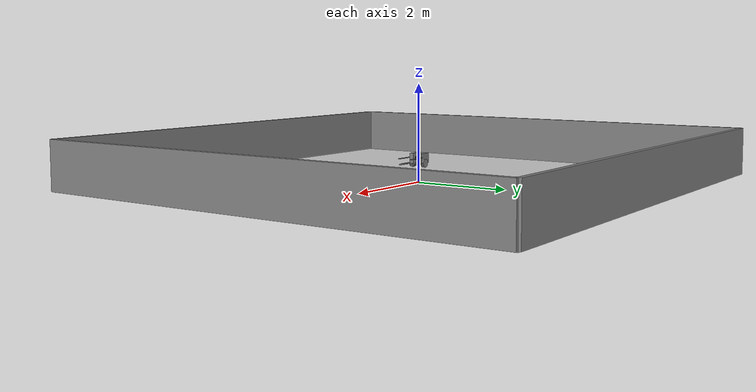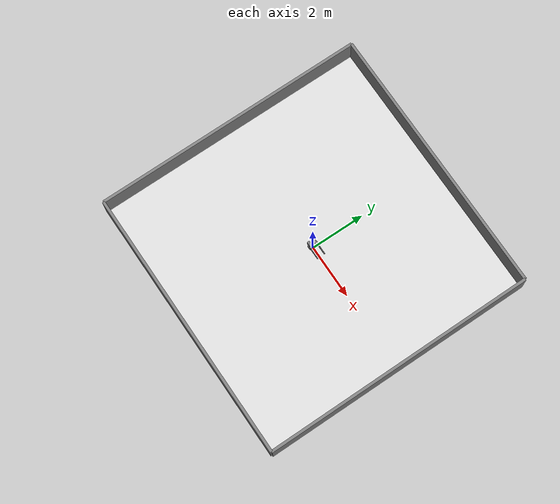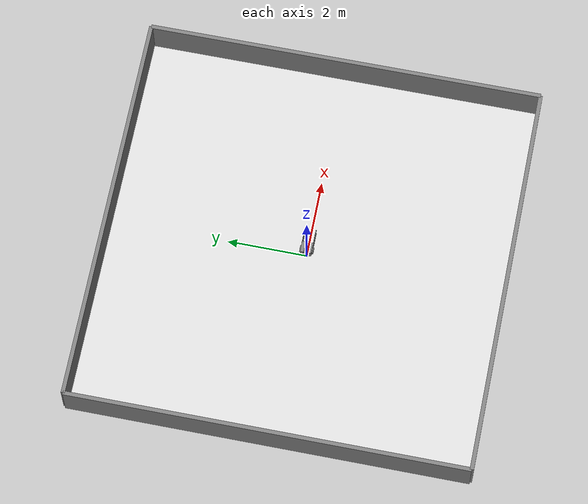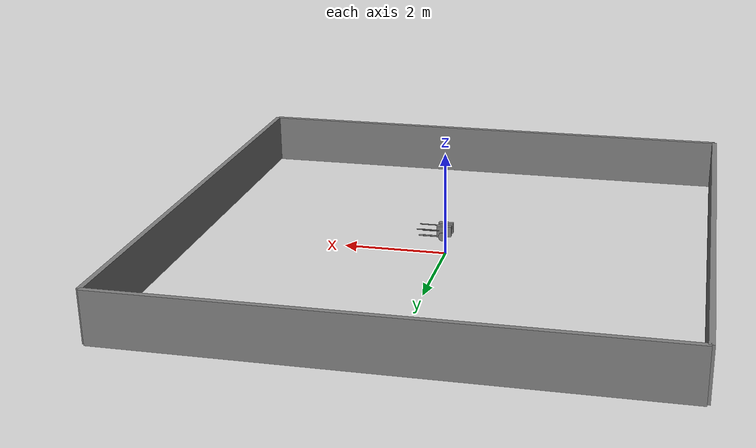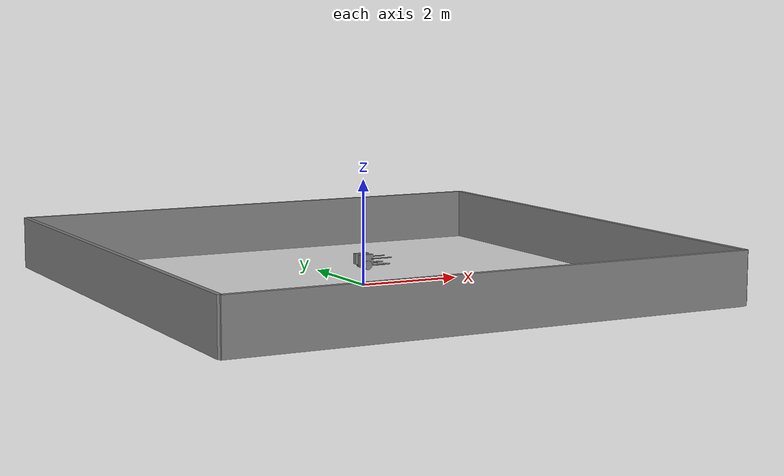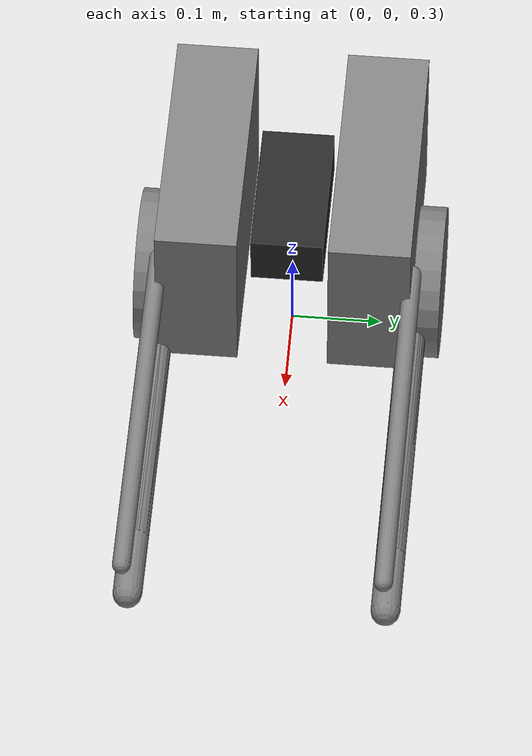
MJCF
<mujoco model="robotv2_3d">
  <compiler angle="radian" coordinate="local"/>
  <option timestep="0.001" integrator="RK4" solver="Newton" gravity="0 0 -9.81"/>

  <default>
    <joint damping="1.0" armature="0.01" limited="true"/>
    <geom contype="1" conaffinity="1" density="500"
          friction="2.0 0.2 0.02" solref="0.01 1" solimp="0.95 0.99 0.001"/>
    <motor ctrlrange="-1 1" ctrllimited="true"/>
  </default>

  <visual>
    <quality shadowsize="2048"/>
    <headlight ambient="0.15 0.15 0.15" diffuse="0.6 0.6 0.6" specular="0.2 0.2 0.2"/>
    <rgba haze="1 1 1 1"/>
    <global azimuth="2.0943951024" elevation="-0.2617993878"/>
  </visual>

  <asset>
    <texture name="floor_tex" type="2d" builtin="checker"
             rgb1="0.92 0.92 0.92" rgb2="0.78 0.78 0.78"
             width="512" height="512"/>
    <material name="floor_mat" texture="floor_tex" texrepeat="6 6"
              reflectance="0.15" shininess="0.8" specular="0.2"/>
  </asset>

  <worldbody>
    <geom name="ground" type="plane" pos="0 0 0" size="5 5 0.1" material="floor_mat"
          friction="2.0 0.2 0.02" condim="3"/>

    <!-- Simple bounding walls (10m x 10m arena) -->
    <geom name="wall_pos_x" type="box" pos="5.0 0 0.5" size="0.05 5.0 0.5"/>
    <geom name="wall_neg_x" type="box" pos="-5.0 0 0.5" size="0.05 5.0 0.5"/>
    <geom name="wall_pos_y" type="box" pos="0 5.0 0.5" size="5.0 0.05 0.5"/>
    <geom name="wall_neg_y" type="box" pos="0 -5.0 0.5" size="5.0 0.05 0.5"/>

    <!-- Studio lights -->
    <light name="key" pos="2 2 2.5" dir="-1 -1 -1" diffuse="0.9 0.9 0.9" specular="0.2 0.2 0.2"/>
    <light name="fill" pos="-2 1 1.5" dir="1 -0.5 -0.5" diffuse="0.4 0.4 0.4" specular="0 0 0"/>

    <!-- Full 3D floating base -->
    <body name="torso" pos="0 0 0.4">
      <joint name="base" type="free"/>

      <!-- Split torso into left/right boxes (rigidly attached to torso) -->
      <body name="torso_L" pos="0 0.095066 0">
        <inertial pos="-0.003391 -0.040604 0.008307" mass="1.284957" fullinertia="0.003761 0.006524 0.005182 0.000051 -0.002014 0.000004"/>
        <geom name="torso_geom_L" type="box" pos="0 0 0.09913"
              size="0.1402955 0.045066 0.09913"/>
      </body>

      <body name="torso_R" pos="0 -0.095066 0">
        <inertial pos="-0.003614 -0.059666 0.008323" mass="1.278354" fullinertia="0.003737 0.006513 0.005158 -0.000056 -0.002015 0.000003"/>
        <geom name="torso_geom_R" type="box" pos="0 0 0.09913"
              size="0.1402955 0.045066 0.09913"/>
      </body>

      <!-- Battery (centered between torso halves) -->
      <body name="battery" pos="0 0 0">
        <inertial pos="0.021501 0.053751 0.034684" mass="1.300646" fullinertia="0.003118 0.001480 0.003267 0.000000 -0.000000 -0.000000"/>
        <geom name="battery_geom" type="box" pos="0 0 0.09913"
              size="0.08 0.04 0.03" rgba="0.15 0.15 0.15 1"/>
      </body>

      <!-- Reference sites (track width = 0.280 m, CAD source of truth) -->
      <site name="H_L"  pos="0.00000  0.14000 0.00000" size="0.006" rgba="0 0 0 1"/>
      <site name="H_R"  pos="0.00000 -0.14000 0.00000" size="0.006" rgba="0 0 0 1"/>
      <site name="Bc_L" pos="0.09893  0.14000 0.11576" size="0.006" rgba="1 0 0 1"/>
      <site name="Bc_R" pos="0.09893 -0.14000 0.11576" size="0.006" rgba="1 0 0 1"/>
      <site name="imu" pos="0 0 0.12" size="0.006"/>

      <!-- Left linkage (Y+): H_L -> K_L -> W_L / C_L -->
      <body name="left_leg" pos="0 0.140 0">
        <body name="upper_L" pos="0 0 0">
          <joint name="hip_L" type="hinge" axis="0 1 0" range="0.4180063559 1.0653489754"/>
          <inertial pos="0.169752 -0.040285 -0.141881" mass="0.314212" fullinertia="0.003236 0.006156 0.004306 -0.000180 0.002982 0.000147"/>

          <site name="K_L" pos="0.39609 0 0" size="0.006" rgba="0 0 1 1"/>
          <geom name="upper_capsule_L" type="capsule"
                fromto="0 0 0  0.39609 0 0" size="0.016"/>

          <body name="lower_L" pos="0.39609 0 0">
            <joint name="knee_L" type="hinge" axis="0 1 0" range="-2.1223203704 -0.7283258969"/>
            <inertial pos="0.216786 -0.033851 -0.317681" mass="0.976380" fullinertia="0.010797 0.026113 0.018611 -0.002970 -0.012002 -0.002149"/>

            <site name="W_L" pos="-0.37996 0 0" size="0.006" rgba="0.6 0.6 0.6 1"/>
            <site name="C_L" pos="0.07506 0 0" size="0.006" rgba="0 1 0 1"/>

            <geom name="lower_capsule_L" type="capsule"
                  fromto="-0.37996 0 0  0.07506 0 0" size="0.016"/>

            <body name="wheel_L" pos="-0.37996 0 0">
              <joint name="wheel_L" type="hinge" axis="0 1 0" range="-100000 100000"/>
              <inertial pos="-0.005660 0.043267 -0.476216" mass="0.747917" fullinertia="0.001480 0.001737 0.001480 0.000000 -0.000000 0.000001"/>
              <geom name="wheel_geom_L" type="cylinder" size="0.085 0.03" euler="1.5707963268 0 0"
                    friction="2.0 0.2 0.02" condim="3"/>
            </body>
          </body>
        </body>
      </body>

      <!-- Rod link: Bc_L -> C_L -->
      <body name="rod_L" pos="0.09893 0.140 0.11576">
        <joint name="bc_L" type="hinge" axis="0 1 0" range="-3.1415926536 3.1415926536"/>
        <inertial pos="0.229129 -0.045290 -0.047488" mass="0.226234" fullinertia="0.005564 0.008976 0.003577 -0.000000 0.004355 0.000000"/>

        <site name="rod_tip_L" pos="0.41762 0 0" size="0.006"/>
        <geom name="rod_capsule_L" type="capsule"
              fromto="0 0 0  0.41762 0 0" size="0.010"/>
      </body>

      <!-- Right linkage (Y-): H_R -> K_R -> W_R / C_R -->
      <body name="right_leg" pos="0 -0.140 0">
        <body name="upper_R" pos="0 0 0">
          <joint name="hip_R" type="hinge" axis="0 1 0" range="0.4180063559 1.0653489754"/>
          <inertial pos="0.170871 -0.239215 -0.140529" mass="0.314212" fullinertia="0.003178 0.006156 0.004350 0.000182 0.002973 -0.000146"/>

          <site name="K_R" pos="0.39609 0 0" size="0.006" rgba="0 0 1 1"/>
          <geom name="upper_capsule_R" type="capsule"
                fromto="0 0 0  0.39609 0 0" size="0.016"/>

          <body name="lower_R" pos="0.39609 0 0">
            <joint name="knee_R" type="hinge" axis="0 1 0" range="-2.1223203704 -0.7283258969"/>
            <inertial pos="0.330666 -0.397670 0.093158" mass="0.978726" fullinertia="0.010936 0.026530 0.018854 0.002965 -0.012196 0.002132"/>

            <site name="W_R" pos="-0.37996 0 0" size="0.006" rgba="0.6 0.6 0.6 1"/>
            <site name="C_R" pos="0.07506 0 0" size="0.006" rgba="0 1 0 1"/>

            <geom name="lower_capsule_R" type="capsule"
                  fromto="-0.37996 0 0  0.07506 0 0" size="0.016"/>

            <body name="wheel_R" pos="-0.37996 0 0">
              <joint name="wheel_R" type="hinge" axis="0 1 0" range="-100000 100000"/>
              <inertial pos="-0.007907 -0.322764 -0.472557" mass="0.747917" fullinertia="0.001446 0.001737 0.001446 0.000000 -0.000000 0.000001"/>
              <geom name="wheel_geom_R" type="cylinder" size="0.085 0.03" euler="1.5707963268 0 0"
                    friction="2.0 0.2 0.02" condim="3"/>
            </body>
          </body>
        </body>
      </body>

      <!-- Rod link: Bc_R -> C_R -->
      <body name="rod_R" pos="0.09893 -0.140 0.11576">
        <joint name="bc_R" type="hinge" axis="0 1 0" range="-3.1415926536 3.1415926536"/>
        <inertial pos="0.230413 -0.235300 -0.046455" mass="0.226234" fullinertia="0.005496 0.008976 0.003646 0.000000 0.004371 -0.000000"/>
        <site name="rod_tip_R" pos="0.41762 0 0" size="0.006"/>
        <geom name="rod_capsule_R" type="capsule"
              fromto="0 0 0  0.41762 0 0" size="0.010"/>
      </body>
    </body>
  </worldbody>

  <!-- Close the loops: rod tips coincide with C points on lower legs -->
  <equality>
    <connect name="loop_BcC_L" site1="rod_tip_L" site2="C_L"
             solref="0.002 1" solimp="0.95 0.99 0.001"/>
    <connect name="loop_BcC_R" site1="rod_tip_R" site2="C_R"
             solref="0.002 1" solimp="0.95 0.99 0.001"/>
  </equality>

  <actuator>
    <position name="act_hip_L" joint="hip_L" kp="1000" kv="2"
              ctrllimited="true" ctrlrange="0.4180063559 1.0653489754"/>
    <motor name="act_wheel_L" joint="wheel_L" gear="-1"
           ctrllimited="true" ctrlrange="-20 20"/>
    <position name="act_hip_R" joint="hip_R" kp="1000" kv="2"
              ctrllimited="true" ctrlrange="0.4180063559 1.0653489754"/>
    <motor name="act_wheel_R" joint="wheel_R" gear="-1"
           ctrllimited="true" ctrlrange="-20 20"/>
  </actuator>

  <sensor>
    <gyro name="gyro" site="imu"/>
    <accelerometer name="acc" site="imu"/>
  </sensor>

  <keyframe>
    <!-- qpos order: base (7) hip_L knee_L wheel_L bc_L hip_R knee_R wheel_R bc_R -->
    <key name="r0"
         qpos="0 0 0.621  1 0 0 0  0.777 -1.52 0 0.961  0.777 -1.52 0 0.961"
         ctrl="0.777 0 0.777 0"/>
  </keyframe>
</mujoco>
